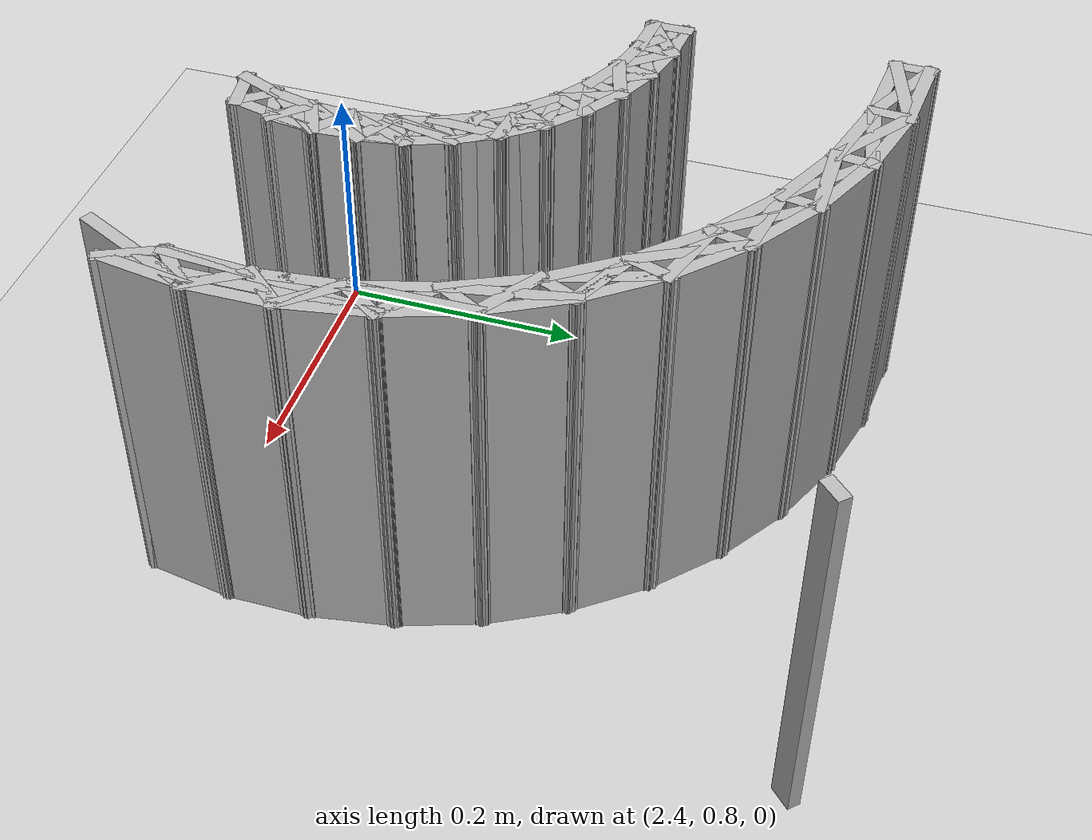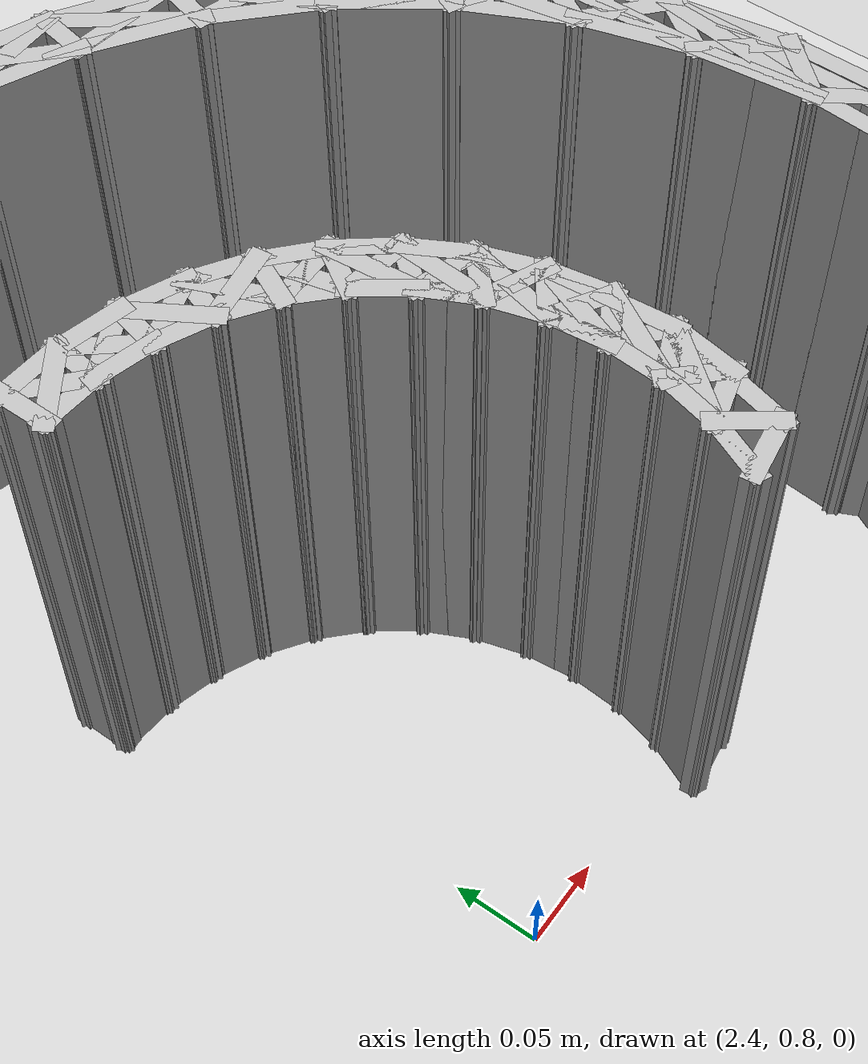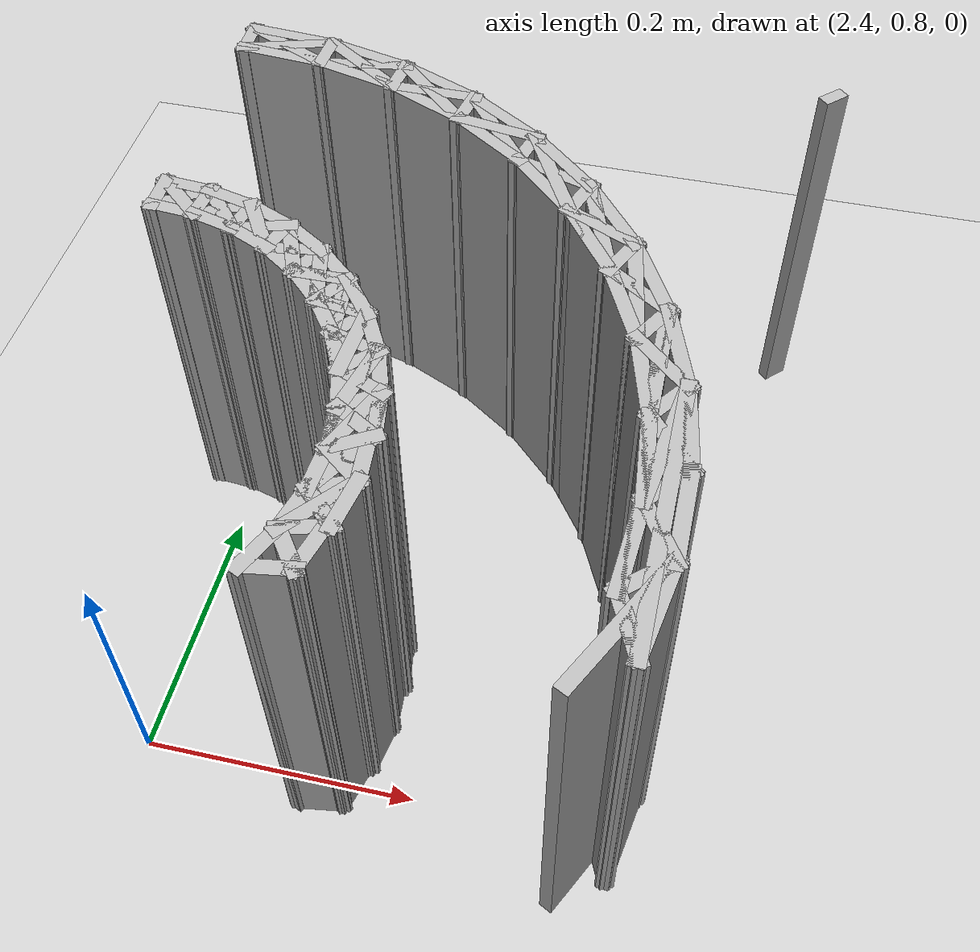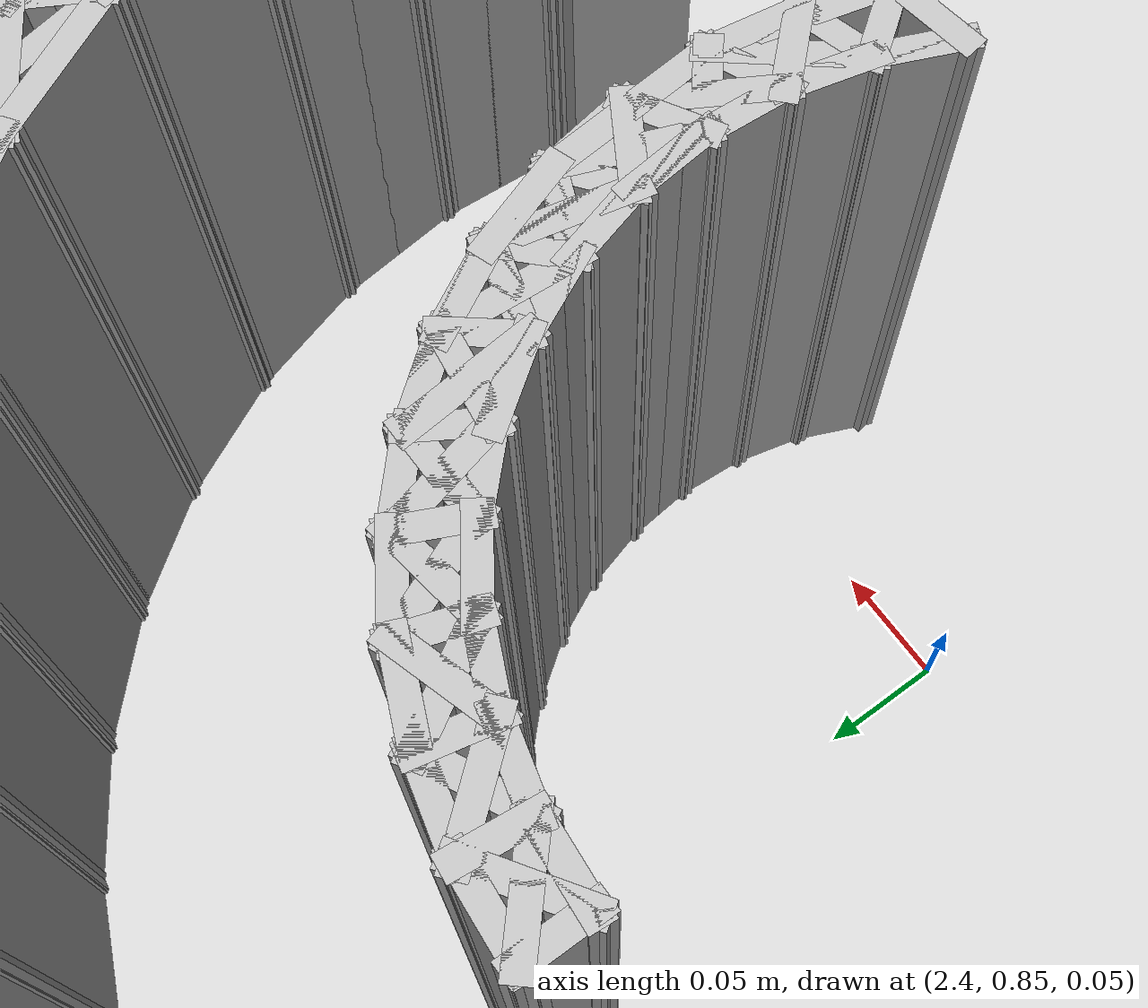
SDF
<sdf version="1.8">
 <world name="rosy_road">
  <model name="ground_plane">
   <link name="l">
    <visual name="v"><geometry><plane><normal>0 0 1</normal><size>4 2</size></plane></geometry></visual>
    <collision name="v"><geometry><plane><normal>0 0 1</normal><size>4 2</size></plane></geometry></collision>
   </link>
  </model>
  <model name="walls">
   <static>true</static>
   <link name="wall_019">
    <pose>2.8076 1.2701 0.150 0 0 0.7854</pose>
    <visual name="v"><geometry><box><size>0.0200 0.0100 0.300</size></box></geometry></visual>
    <collision name="c"><geometry><box><size>0.0200 0.0100 0.300</size></box></geometry></collision>
   </link>
   <link name="wall_122">
    <pose>2.3650 1.2450 0.150 0 0 1.5708</pose>
    <visual name="v"><geometry><box><size>0.0369 0.0100 0.300</size></box></geometry></visual>
    <collision name="c"><geometry><box><size>0.0369 0.0100 0.300</size></box></geometry></collision>
   </link>
   <link name="wall_123">
    <pose>2.3963 1.2423 0.150 0 0 -0.4515</pose>
    <visual name="v"><geometry><box><size>0.0817 0.0100 0.300</size></box></geometry></visual>
    <collision name="c"><geometry><box><size>0.0817 0.0100 0.300</size></box></geometry></collision>
   </link>
   <link name="wall_124">
    <pose>2.3963 1.2298 0.150 0 0 3.0541</pose>
    <visual name="v"><geometry><box><size>0.0749 0.0100 0.300</size></box></geometry></visual>
    <collision name="c"><geometry><box><size>0.0749 0.0100 0.300</size></box></geometry></collision>
   </link>
   <link name="wall_125">
    <pose>2.3971 1.2424 0.150 0 0 0.2963</pose>
    <visual name="v"><geometry><box><size>0.0791 0.0100 0.300</size></box></geometry></visual>
    <collision name="c"><geometry><box><size>0.0791 0.0100 0.300</size></box></geometry></collision>
   </link>
   <link name="wall_126">
    <pose>2.3971 1.2548 0.150 0 0 3.0592</pose>
    <visual name="v"><geometry><box><size>0.0764 0.0100 0.300</size></box></geometry></visual>
    <collision name="c"><geometry><box><size>0.0764 0.0100 0.300</size></box></geometry></collision>
   </link>
   <link name="wall_132">
    <pose>2.4284 1.2397 0.150 0 0 1.5111</pose>
    <visual name="v"><geometry><box><size>0.0371 0.0100 0.300</size></box></geometry></visual>
    <collision name="c"><geometry><box><size>0.0371 0.0100 0.300</size></box></geometry></collision>
   </link>
   <link name="wall_133">
    <pose>2.4589 1.2316 0.150 0 0 -0.6064</pose>
    <visual name="v"><geometry><box><size>0.0843 0.0100 0.300</size></box></geometry></visual>
    <collision name="c"><geometry><box><size>0.0843 0.0100 0.300</size></box></geometry></collision>
   </link>
   <link name="wall_134">
    <pose>2.4581 1.2190 0.150 0 0 2.8831</pose>
    <visual name="v"><geometry><box><size>0.0750 0.0100 0.300</size></box></geometry></visual>
    <collision name="c"><geometry><box><size>0.0750 0.0100 0.300</size></box></geometry></collision>
   </link>
   <link name="wall_135">
    <pose>2.4596 1.2318 0.150 0 0 0.1463</pose>
    <visual name="v"><geometry><box><size>0.0765 0.0100 0.300</size></box></geometry></visual>
    <collision name="c"><geometry><box><size>0.0765 0.0100 0.300</size></box></geometry></collision>
   </link>
   <link name="wall_136">
    <pose>2.4604 1.2443 0.150 0 0 2.8947</pose>
    <visual name="v"><geometry><box><size>0.0762 0.0100 0.300</size></box></geometry></visual>
    <collision name="c"><geometry><box><size>0.0762 0.0100 0.300</size></box></geometry></collision>
   </link>
   <link name="wall_142">
    <pose>2.4901 1.2237 0.150 0 0 1.4576</pose>
    <visual name="v"><geometry><box><size>0.0377 0.0100 0.300</size></box></geometry></visual>
    <collision name="c"><geometry><box><size>0.0377 0.0100 0.300</size></box></geometry></collision>
   </link>
   <link name="wall_143">
    <pose>2.5186 1.2106 0.150 0 0 -0.7628</pose>
    <visual name="v"><geometry><box><size>0.0870 0.0100 0.300</size></box></geometry></visual>
    <collision name="c"><geometry><box><size>0.0870 0.0100 0.300</size></box></geometry></collision>
   </link>
   <link name="wall_144">
    <pose>2.5171 1.1978 0.150 0 0 2.7100</pose>
    <visual name="v"><geometry><box><size>0.0749 0.0100 0.300</size></box></geometry></visual>
    <collision name="c"><geometry><box><size>0.0749 0.0100 0.300</size></box></geometry></collision>
   </link>
   <link name="wall_145">
    <pose>2.5195 1.2108 0.150 0 0 -0.0049</pose>
    <visual name="v"><geometry><box><size>0.0738 0.0100 0.300</size></box></geometry></visual>
    <collision name="c"><geometry><box><size>0.0738 0.0100 0.300</size></box></geometry></collision>
   </link>
   <link name="wall_146">
    <pose>2.5210 1.2236 0.150 0 0 2.7287</pose>
    <visual name="v"><geometry><box><size>0.0763 0.0100 0.300</size></box></geometry></visual>
    <collision name="c"><geometry><box><size>0.0763 0.0100 0.300</size></box></geometry></collision>
   </link>
   <link name="wall_152">
    <pose>2.5481 1.1977 0.150 0 0 1.3920</pose>
    <visual name="v"><geometry><box><size>0.0384 0.0100 0.300</size></box></geometry></visual>
    <collision name="c"><geometry><box><size>0.0384 0.0100 0.300</size></box></geometry></collision>
   </link>
   <link name="wall_153">
    <pose>2.5739 1.1798 0.150 0 0 -0.9196</pose>
    <visual name="v"><geometry><box><size>0.0897 0.0100 0.300</size></box></geometry></visual>
    <collision name="c"><geometry><box><size>0.0897 0.0100 0.300</size></box></geometry></collision>
   </link>
   <link name="wall_154">
    <pose>2.5716 1.1668 0.150 0 0 2.5369</pose>
    <visual name="v"><geometry><box><size>0.0750 0.0100 0.300</size></box></geometry></visual>
    <collision name="c"><geometry><box><size>0.0750 0.0100 0.300</size></box></geometry></collision>
   </link>
   <link name="wall_155">
    <pose>2.5750 1.1801 0.150 0 0 -0.1557</pose>
    <visual name="v"><geometry><box><size>0.0713 0.0100 0.300</size></box></geometry></visual>
    <collision name="c"><geometry><box><size>0.0713 0.0100 0.300</size></box></geometry></collision>
   </link>
   <link name="wall_156">
    <pose>2.5774 1.1931 0.150 0 0 2.5631</pose>
    <visual name="v"><geometry><box><size>0.0764 0.0100 0.300</size></box></geometry></visual>
    <collision name="c"><geometry><box><size>0.0764 0.0100 0.300</size></box></geometry></collision>
   </link>
   <link name="wall_162">
    <pose>2.6009 1.1622 0.150 0 0 1.3205</pose>
    <visual name="v"><geometry><box><size>0.0395 0.0100 0.300</size></box></geometry></visual>
    <collision name="c"><geometry><box><size>0.0395 0.0100 0.300</size></box></geometry></collision>
   </link>
   <link name="wall_163">
    <pose>2.6234 1.1401 0.150 0 0 -1.0765</pose>
    <visual name="v"><geometry><box><size>0.0923 0.0100 0.300</size></box></geometry></visual>
    <collision name="c"><geometry><box><size>0.0923 0.0100 0.300</size></box></geometry></collision>
   </link>
   <link name="wall_164">
    <pose>2.6199 1.1268 0.150 0 0 2.3652</pose>
    <visual name="v"><geometry><box><size>0.0749 0.0100 0.300</size></box></geometry></visual>
    <collision name="c"><geometry><box><size>0.0749 0.0100 0.300</size></box></geometry></collision>
   </link>
   <link name="wall_165">
    <pose>2.6246 1.1404 0.150 0 0 -0.3023</pose>
    <visual name="v"><geometry><box><size>0.0688 0.0100 0.300</size></box></geometry></visual>
    <collision name="c"><geometry><box><size>0.0688 0.0100 0.300</size></box></geometry></collision>
   </link>
   <link name="wall_166">
    <pose>2.6280 1.1538 0.150 0 0 2.3991</pose>
    <visual name="v"><geometry><box><size>0.0763 0.0100 0.300</size></box></geometry></visual>
    <collision name="c"><geometry><box><size>0.0763 0.0100 0.300</size></box></geometry></collision>
   </link>
   <link name="wall_172">
    <pose>2.6471 1.1184 0.150 0 0 1.2413</pose>
    <visual name="v"><geometry><box><size>0.0407 0.0100 0.300</size></box></geometry></visual>
    <collision name="c"><geometry><box><size>0.0407 0.0100 0.300</size></box></geometry></collision>
   </link>
   <link name="wall_173">
    <pose>2.6654 1.0928 0.150 0 0 -1.2353</pose>
    <visual name="v"><geometry><box><size>0.0949 0.0100 0.300</size></box></geometry></visual>
    <collision name="c"><geometry><box><size>0.0949 0.0100 0.300</size></box></geometry></collision>
   </link>
   <link name="wall_174">
    <pose>2.6607 1.0793 0.150 0 0 2.1923</pose>
    <visual name="v"><geometry><box><size>0.0749 0.0100 0.300</size></box></geometry></visual>
    <collision name="c"><geometry><box><size>0.0749 0.0100 0.300</size></box></geometry></collision>
   </link>
   <link name="wall_175">
    <pose>2.6668 1.0930 0.150 0 0 -0.4488</pose>
    <visual name="v"><geometry><box><size>0.0662 0.0100 0.300</size></box></geometry></visual>
    <collision name="c"><geometry><box><size>0.0662 0.0100 0.300</size></box></geometry></collision>
   </link>
   <link name="wall_176">
    <pose>2.6714 1.1067 0.150 0 0 2.2327</pose>
    <visual name="v"><geometry><box><size>0.0763 0.0100 0.300</size></box></geometry></visual>
    <collision name="c"><geometry><box><size>0.0763 0.0100 0.300</size></box></geometry></collision>
   </link>
   <link name="wall_177">
    <pose>2.6654 1.0928 0.150 0 0 -1.2353</pose>
    <visual name="v"><geometry><box><size>0.0949 0.0100 0.300</size></box></geometry></visual>
    <collision name="c"><geometry><box><size>0.0949 0.0100 0.300</size></box></geometry></collision>
   </link>
   <link name="wall_178">
    <pose>2.6851 1.0675 0.150 0 0 1.1546</pose>
    <visual name="v"><geometry><box><size>0.0422 0.0100 0.300</size></box></geometry></visual>
    <collision name="c"><geometry><box><size>0.0422 0.0100 0.300</size></box></geometry></collision>
   </link>
   <link name="wall_179">
    <pose>2.6987 1.0392 0.150 0 0 -1.3936</pose>
    <visual name="v"><geometry><box><size>0.0976 0.0100 0.300</size></box></geometry></visual>
    <collision name="c"><geometry><box><size>0.0976 0.0100 0.300</size></box></geometry></collision>
   </link>
   <link name="wall_180">
    <pose>2.6926 1.0253 0.150 0 0 2.0195</pose>
    <visual name="v"><geometry><box><size>0.0749 0.0100 0.300</size></box></geometry></visual>
    <collision name="c"><geometry><box><size>0.0749 0.0100 0.300</size></box></geometry></collision>
   </link>
   <link name="wall_181">
    <pose>2.7005 1.0393 0.150 0 0 -0.5928</pose>
    <visual name="v"><geometry><box><size>0.0637 0.0100 0.300</size></box></geometry></visual>
    <collision name="c"><geometry><box><size>0.0637 0.0100 0.300</size></box></geometry></collision>
   </link>
   <link name="wall_182">
    <pose>2.7066 1.0531 0.150 0 0 2.0685</pose>
    <visual name="v"><geometry><box><size>0.0763 0.0100 0.300</size></box></geometry></visual>
    <collision name="c"><geometry><box><size>0.0763 0.0100 0.300</size></box></geometry></collision>
   </link>
   <link name="wall_183">
    <pose>2.6668 1.0930 0.150 0 0 2.6928</pose>
    <visual name="v"><geometry><box><size>0.0662 0.0100 0.300</size></box></geometry></visual>
    <collision name="c"><geometry><box><size>0.0662 0.0100 0.300</size></box></geometry></collision>
   </link>
   <link name="wall_184">
    <pose>2.6607 1.0793 0.150 0 0 -0.9493</pose>
    <visual name="v"><geometry><box><size>0.0749 0.0100 0.300</size></box></geometry></visual>
    <collision name="c"><geometry><box><size>0.0749 0.0100 0.300</size></box></geometry></collision>
   </link>
   <link name="wall_185">
    <pose>2.6851 1.0675 0.150 0 0 1.1546</pose>
    <visual name="v"><geometry><box><size>0.0422 0.0100 0.300</size></box></geometry></visual>
    <collision name="c"><geometry><box><size>0.0422 0.0100 0.300</size></box></geometry></collision>
   </link>
   <link name="wall_186">
    <pose>2.6714 1.1067 0.150 0 0 2.2327</pose>
    <visual name="v"><geometry><box><size>0.0763 0.0100 0.300</size></box></geometry></visual>
    <collision name="c"><geometry><box><size>0.0763 0.0100 0.300</size></box></geometry></collision>
   </link>
   <link name="wall_197">
    <pose>2.7141 1.0109 0.150 0 0 1.0594</pose>
    <visual name="v"><geometry><box><size>0.0439 0.0100 0.300</size></box></geometry></visual>
    <collision name="c"><geometry><box><size>0.0439 0.0100 0.300</size></box></geometry></collision>
   </link>
   <link name="wall_198">
    <pose>2.7227 0.9806 0.150 0 0 -1.5527</pose>
    <visual name="v"><geometry><box><size>0.1004 0.0100 0.300</size></box></geometry></visual>
    <collision name="c"><geometry><box><size>0.1004 0.0100 0.300</size></box></geometry></collision>
   </link>
   <link name="wall_199">
    <pose>2.7149 0.9667 0.150 0 0 1.8474</pose>
    <visual name="v"><geometry><box><size>0.0750 0.0100 0.300</size></box></geometry></visual>
    <collision name="c"><geometry><box><size>0.0750 0.0100 0.300</size></box></geometry></collision>
   </link>
   <link name="wall_200">
    <pose>2.7246 0.9805 0.150 0 0 -0.7337</pose>
    <visual name="v"><geometry><box><size>0.0613 0.0100 0.300</size></box></geometry></visual>
    <collision name="c"><geometry><box><size>0.0613 0.0100 0.300</size></box></geometry></collision>
   </link>
   <link name="wall_201">
    <pose>2.7066 1.0531 0.150 0 0 2.0685</pose>
    <visual name="v"><geometry><box><size>0.0763 0.0100 0.300</size></box></geometry></visual>
    <collision name="c"><geometry><box><size>0.0763 0.0100 0.300</size></box></geometry></collision>
   </link>
   <link name="wall_202">
    <pose>2.6987 1.0392 0.150 0 0 -1.3936</pose>
    <visual name="v"><geometry><box><size>0.0976 0.0100 0.300</size></box></geometry></visual>
    <collision name="c"><geometry><box><size>0.0976 0.0100 0.300</size></box></geometry></collision>
   </link>
   <link name="wall_203">
    <pose>2.6926 1.0253 0.150 0 0 2.0195</pose>
    <visual name="v"><geometry><box><size>0.0749 0.0100 0.300</size></box></geometry></visual>
    <collision name="c"><geometry><box><size>0.0749 0.0100 0.300</size></box></geometry></collision>
   </link>
   <link name="wall_204">
    <pose>2.7005 1.0393 0.150 0 0 -0.5928</pose>
    <visual name="v"><geometry><box><size>0.0637 0.0100 0.300</size></box></geometry></visual>
    <collision name="c"><geometry><box><size>0.0637 0.0100 0.300</size></box></geometry></collision>
   </link>
   <link name="wall_205">
    <pose>2.7141 1.0109 0.150 0 0 -2.0822</pose>
    <visual name="v"><geometry><box><size>0.0439 0.0100 0.300</size></box></geometry></visual>
    <collision name="c"><geometry><box><size>0.0439 0.0100 0.300</size></box></geometry></collision>
   </link>
   <link name="wall_206">
    <pose>2.7246 0.9805 0.150 0 0 -0.7337</pose>
    <visual name="v"><geometry><box><size>0.0613 0.0100 0.300</size></box></geometry></visual>
    <collision name="c"><geometry><box><size>0.0613 0.0100 0.300</size></box></geometry></collision>
   </link>
   <link name="wall_207">
    <pose>2.7332 0.9502 0.150 0 0 -2.1835</pose>
    <visual name="v"><geometry><box><size>0.0457 0.0100 0.300</size></box></geometry></visual>
    <collision name="c"><geometry><box><size>0.0457 0.0100 0.300</size></box></geometry></collision>
   </link>
   <link name="wall_208">
    <pose>2.7268 0.9051 0.150 0 0 -1.4673</pose>
    <visual name="v"><geometry><box><size>0.0749 0.0100 0.300</size></box></geometry></visual>
    <collision name="c"><geometry><box><size>0.0749 0.0100 0.300</size></box></geometry></collision>
   </link>
   <link name="wall_209">
    <pose>2.7364 0.9189 0.150 0 0 1.4287</pose>
    <visual name="v"><geometry><box><size>0.1031 0.0100 0.300</size></box></geometry></visual>
    <collision name="c"><geometry><box><size>0.1031 0.0100 0.300</size></box></geometry></collision>
   </link>
   <link name="wall_210">
    <pose>2.7483 0.9323 0.150 0 0 -1.4036</pose>
    <visual name="v"><geometry><box><size>0.0763 0.0100 0.300</size></box></geometry></visual>
    <collision name="c"><geometry><box><size>0.0763 0.0100 0.300</size></box></geometry></collision>
   </link>
   <link name="wall_211">
    <pose>2.7386 0.9185 0.150 0 0 2.2699</pose>
    <visual name="v"><geometry><box><size>0.0588 0.0100 0.300</size></box></geometry></visual>
    <collision name="c"><geometry><box><size>0.0588 0.0100 0.300</size></box></geometry></collision>
   </link>
   <link name="wall_212">
    <pose>2.7227 0.9806 0.150 0 0 1.5889</pose>
    <visual name="v"><geometry><box><size>0.1004 0.0100 0.300</size></box></geometry></visual>
    <collision name="c"><geometry><box><size>0.1004 0.0100 0.300</size></box></geometry></collision>
   </link>
   <link name="wall_213">
    <pose>2.7324 0.9944 0.150 0 0 -1.2382</pose>
    <visual name="v"><geometry><box><size>0.0763 0.0100 0.300</size></box></geometry></visual>
    <collision name="c"><geometry><box><size>0.0763 0.0100 0.300</size></box></geometry></collision>
   </link>
   <link name="wall_214">
    <pose>2.7332 0.9502 0.150 0 0 -2.1835</pose>
    <visual name="v"><geometry><box><size>0.0457 0.0100 0.300</size></box></geometry></visual>
    <collision name="c"><geometry><box><size>0.0457 0.0100 0.300</size></box></geometry></collision>
   </link>
   <link name="wall_215">
    <pose>2.7149 0.9667 0.150 0 0 1.8474</pose>
    <visual name="v"><geometry><box><size>0.0750 0.0100 0.300</size></box></geometry></visual>
    <collision name="c"><geometry><box><size>0.0750 0.0100 0.300</size></box></geometry></collision>
   </link>
   <link name="wall_226">
    <pose>2.7418 0.8872 0.150 0 0 -2.2928</pose>
    <visual name="v"><geometry><box><size>0.0477 0.0100 0.300</size></box></geometry></visual>
    <collision name="c"><geometry><box><size>0.0477 0.0100 0.300</size></box></geometry></collision>
   </link>
   <link name="wall_227">
    <pose>2.7279 0.8425 0.150 0 0 -1.6393</pose>
    <visual name="v"><geometry><box><size>0.0748 0.0100 0.300</size></box></geometry></visual>
    <collision name="c"><geometry><box><size>0.0748 0.0100 0.300</size></box></geometry></collision>
   </link>
   <link name="wall_228">
    <pose>2.7279 0.8425 0.150 0 0 1.5023</pose>
    <visual name="v"><geometry><box><size>0.0748 0.0100 0.300</size></box></geometry></visual>
    <collision name="c"><geometry><box><size>0.0748 0.0100 0.300</size></box></geometry></collision>
   </link>
   <link name="wall_229">
    <pose>2.7418 0.8872 0.150 0 0 0.8488</pose>
    <visual name="v"><geometry><box><size>0.0477 0.0100 0.300</size></box></geometry></visual>
    <collision name="c"><geometry><box><size>0.0477 0.0100 0.300</size></box></geometry></collision>
   </link>
   <link name="wall_231">
    <pose>2.7322 0.7932 0.150 0 0 1.1067</pose>
    <visual name="v"><geometry><box><size>0.1085 0.0100 0.300</size></box></geometry></visual>
    <collision name="c"><geometry><box><size>0.1085 0.0100 0.300</size></box></geometry></collision>
   </link>
   <link name="wall_232">
    <pose>2.7419 0.8550 0.150 0 0 2.1363</pose>
    <visual name="v"><geometry><box><size>0.0564 0.0100 0.300</size></box></geometry></visual>
    <collision name="c"><geometry><box><size>0.0564 0.0100 0.300</size></box></geometry></collision>
   </link>
   <link name="wall_233">
    <pose>2.7268 0.9051 0.150 0 0 1.6743</pose>
    <visual name="v"><geometry><box><size>0.0749 0.0100 0.300</size></box></geometry></visual>
    <collision name="c"><geometry><box><size>0.0749 0.0100 0.300</size></box></geometry></collision>
   </link>
   <link name="wall_234">
    <pose>2.7386 0.9185 0.150 0 0 -0.8717</pose>
    <visual name="v"><geometry><box><size>0.0588 0.0100 0.300</size></box></geometry></visual>
    <collision name="c"><geometry><box><size>0.0588 0.0100 0.300</size></box></geometry></collision>
   </link>
   <link name="wall_235">
    <pose>2.7537 0.8685 0.150 0 0 -1.5677</pose>
    <visual name="v"><geometry><box><size>0.0763 0.0100 0.300</size></box></geometry></visual>
    <collision name="c"><geometry><box><size>0.0763 0.0100 0.300</size></box></geometry></collision>
   </link>
   <link name="wall_236">
    <pose>2.7397 0.8237 0.150 0 0 -2.4105</pose>
    <visual name="v"><geometry><box><size>0.0497 0.0100 0.300</size></box></geometry></visual>
    <collision name="c"><geometry><box><size>0.0497 0.0100 0.300</size></box></geometry></collision>
   </link>
   <link name="wall_237">
    <pose>2.7346 0.7920 0.150 0 0 -1.1379</pose>
    <visual name="v"><geometry><box><size>0.0542 0.0100 0.300</size></box></geometry></visual>
    <collision name="c"><geometry><box><size>0.0542 0.0100 0.300</size></box></geometry></collision>
   </link>
   <link name="wall_238">
    <pose>2.7431 0.8684 0.150 0 0 1.5734</pose>
    <visual name="v"><geometry><box><size>0.2032 0.0100 0.300</size></box></geometry></visual>
    <collision name="c"><geometry><box><size>0.2032 0.0100 0.300</size></box></geometry></collision>
   </link>
   <link name="wall_249">
    <pose>2.7397 0.8237 0.150 0 0 -2.4105</pose>
    <visual name="v"><geometry><box><size>0.0497 0.0100 0.300</size></box></geometry></visual>
    <collision name="c"><geometry><box><size>0.0497 0.0100 0.300</size></box></geometry></collision>
   </link>
   <link name="wall_262">
    <pose>2.7486 0.8045 0.150 0 0 1.4085</pose>
    <visual name="v"><geometry><box><size>0.0763 0.0100 0.300</size></box></geometry></visual>
    <collision name="c"><geometry><box><size>0.0763 0.0100 0.300</size></box></geometry></collision>
   </link>
   <link name="wall_263">
    <pose>2.7419 0.8550 0.150 0 0 2.1363</pose>
    <visual name="v"><geometry><box><size>0.0564 0.0100 0.300</size></box></geometry></visual>
    <collision name="c"><geometry><box><size>0.0564 0.0100 0.300</size></box></geometry></collision>
   </link>
   <link name="wall_284">
    <pose>2.7346 0.7920 0.150 0 0 2.0037</pose>
    <visual name="v"><geometry><box><size>0.0542 0.0100 0.300</size></box></geometry></visual>
    <collision name="c"><geometry><box><size>0.0542 0.0100 0.300</size></box></geometry></collision>
   </link>
   <link name="wall_825">
    <pose>2.3650 1.0600 0.150 0 0 1.5708</pose>
    <visual name="v"><geometry><box><size>0.0371 0.0100 0.300</size></box></geometry></visual>
    <collision name="c"><geometry><box><size>0.0371 0.0100 0.300</size></box></geometry></collision>
   </link>
   <link name="wall_826">
    <pose>2.3805 1.0588 0.150 0 0 -0.7292</pose>
    <visual name="v"><geometry><box><size>0.0536 0.0100 0.300</size></box></geometry></visual>
    <collision name="c"><geometry><box><size>0.0536 0.0100 0.300</size></box></geometry></collision>
   </link>
   <link name="wall_827">
    <pose>2.3805 1.0462 0.150 0 0 3.0579</pose>
    <visual name="v"><geometry><box><size>0.0431 0.0100 0.300</size></box></geometry></visual>
    <collision name="c"><geometry><box><size>0.0431 0.0100 0.300</size></box></geometry></collision>
   </link>
   <link name="wall_828">
    <pose>2.3819 1.0587 0.150 0 0 0.5846</pose>
    <visual name="v"><geometry><box><size>0.0524 0.0100 0.300</size></box></geometry></visual>
    <collision name="c"><geometry><box><size>0.0524 0.0100 0.300</size></box></geometry></collision>
   </link>
   <link name="wall_829">
    <pose>2.3819 1.0712 0.150 0 0 3.0587</pose>
    <visual name="v"><geometry><box><size>0.0458 0.0100 0.300</size></box></geometry></visual>
    <collision name="c"><geometry><box><size>0.0458 0.0100 0.300</size></box></geometry></collision>
   </link>
   <link name="wall_835">
    <pose>2.3973 1.0574 0.150 0 0 1.4628</pose>
    <visual name="v"><geometry><box><size>0.0370 0.0100 0.300</size></box></geometry></visual>
    <collision name="c"><geometry><box><size>0.0370 0.0100 0.300</size></box></geometry></collision>
   </link>
   <link name="wall_836">
    <pose>2.4123 1.0534 0.150 0 0 -0.8782</pose>
    <visual name="v"><geometry><box><size>0.0548 0.0100 0.300</size></box></geometry></visual>
    <collision name="c"><geometry><box><size>0.0548 0.0100 0.300</size></box></geometry></collision>
   </link>
   <link name="wall_837">
    <pose>2.4110 1.0409 0.150 0 0 2.8810</pose>
    <visual name="v"><geometry><box><size>0.0430 0.0100 0.300</size></box></geometry></visual>
    <collision name="c"><geometry><box><size>0.0430 0.0100 0.300</size></box></geometry></collision>
   </link>
   <link name="wall_838">
    <pose>2.4137 1.0532 0.150 0 0 0.4374</pose>
    <visual name="v"><geometry><box><size>0.0512 0.0100 0.300</size></box></geometry></visual>
    <collision name="c"><geometry><box><size>0.0512 0.0100 0.300</size></box></geometry></collision>
   </link>
   <link name="wall_839">
    <pose>2.4151 1.0656 0.150 0 0 2.8937</pose>
    <visual name="v"><geometry><box><size>0.0458 0.0100 0.300</size></box></geometry></visual>
    <collision name="c"><geometry><box><size>0.0458 0.0100 0.300</size></box></geometry></collision>
   </link>
   <link name="wall_845">
    <pose>2.4287 1.0492 0.150 0 0 1.3508</pose>
    <visual name="v"><geometry><box><size>0.0372 0.0100 0.300</size></box></geometry></visual>
    <collision name="c"><geometry><box><size>0.0372 0.0100 0.300</size></box></geometry></collision>
   </link>
   <link name="wall_846">
    <pose>2.4428 1.0427 0.150 0 0 -1.0276</pose>
    <visual name="v"><geometry><box><size>0.0559 0.0100 0.300</size></box></geometry></visual>
    <collision name="c"><geometry><box><size>0.0559 0.0100 0.300</size></box></geometry></collision>
   </link>
   <link name="wall_847">
    <pose>2.4401 1.0304 0.150 0 0 2.7096</pose>
    <visual name="v"><geometry><box><size>0.0431 0.0100 0.300</size></box></geometry></visual>
    <collision name="c"><geometry><box><size>0.0431 0.0100 0.300</size></box></geometry></collision>
   </link>
   <link name="wall_848">
    <pose>2.4442 1.0424 0.150 0 0 0.2927</pose>
    <visual name="v"><geometry><box><size>0.0501 0.0100 0.300</size></box></geometry></visual>
    <collision name="c"><geometry><box><size>0.0501 0.0100 0.300</size></box></geometry></collision>
   </link>
   <link name="wall_849">
    <pose>2.4470 1.0547 0.150 0 0 2.7282</pose>
    <visual name="v"><geometry><box><size>0.0459 0.0100 0.300</size></box></geometry></visual>
    <collision name="c"><geometry><box><size>0.0459 0.0100 0.300</size></box></geometry></collision>
   </link>
   <link name="wall_855">
    <pose>2.4583 1.0359 0.150 0 0 1.2378</pose>
    <visual name="v"><geometry><box><size>0.0374 0.0100 0.300</size></box></geometry></visual>
    <collision name="c"><geometry><box><size>0.0374 0.0100 0.300</size></box></geometry></collision>
   </link>
   <link name="wall_856">
    <pose>2.4711 1.0271 0.150 0 0 -1.1787</pose>
    <visual name="v"><geometry><box><size>0.0570 0.0100 0.300</size></box></geometry></visual>
    <collision name="c"><geometry><box><size>0.0570 0.0100 0.300</size></box></geometry></collision>
   </link>
   <link name="wall_857">
    <pose>2.4669 1.0151 0.150 0 0 2.5375</pose>
    <visual name="v"><geometry><box><size>0.0430 0.0100 0.300</size></box></geometry></visual>
    <collision name="c"><geometry><box><size>0.0430 0.0100 0.300</size></box></geometry></collision>
   </link>
   <link name="wall_858">
    <pose>2.4725 1.0267 0.150 0 0 0.1492</pose>
    <visual name="v"><geometry><box><size>0.0490 0.0100 0.300</size></box></geometry></visual>
    <collision name="c"><geometry><box><size>0.0490 0.0100 0.300</size></box></geometry></collision>
   </link>
   <link name="wall_859">
    <pose>2.4767 1.0387 0.150 0 0 2.5626</pose>
    <visual name="v"><geometry><box><size>0.0458 0.0100 0.300</size></box></geometry></visual>
    <collision name="c"><geometry><box><size>0.0458 0.0100 0.300</size></box></geometry></collision>
   </link>
   <link name="wall_865">
    <pose>2.4853 1.0178 0.150 0 0 1.1229</pose>
    <visual name="v"><geometry><box><size>0.0376 0.0100 0.300</size></box></geometry></visual>
    <collision name="c"><geometry><box><size>0.0376 0.0100 0.300</size></box></geometry></collision>
   </link>
   <link name="wall_866">
    <pose>2.4963 1.0070 0.150 0 0 -1.3300</pose>
    <visual name="v"><geometry><box><size>0.0581 0.0100 0.300</size></box></geometry></visual>
    <collision name="c"><geometry><box><size>0.0581 0.0100 0.300</size></box></geometry></collision>
   </link>
   <link name="wall_867">
    <pose>2.4907 0.9955 0.150 0 0 2.3653</pose>
    <visual name="v"><geometry><box><size>0.0430 0.0100 0.300</size></box></geometry></visual>
    <collision name="c"><geometry><box><size>0.0430 0.0100 0.300</size></box></geometry></collision>
   </link>
   <link name="wall_868">
    <pose>2.4977 1.0065 0.150 0 0 0.0083</pose>
    <visual name="v"><geometry><box><size>0.0480 0.0100 0.300</size></box></geometry></visual>
    <collision name="c"><geometry><box><size>0.0480 0.0100 0.300</size></box></geometry></collision>
   </link>
   <link name="wall_869">
    <pose>2.5032 1.0180 0.150 0 0 2.4002</pose>
    <visual name="v"><geometry><box><size>0.0458 0.0100 0.300</size></box></geometry></visual>
    <collision name="c"><geometry><box><size>0.0458 0.0100 0.300</size></box></geometry></collision>
   </link>
   <link name="wall_870">
    <pose>2.4963 1.0070 0.150 0 0 -1.3300</pose>
    <visual name="v"><geometry><box><size>0.0581 0.0100 0.300</size></box></geometry></visual>
    <collision name="c"><geometry><box><size>0.0581 0.0100 0.300</size></box></geometry></collision>
   </link>
   <link name="wall_871">
    <pose>2.5088 0.9956 0.150 0 0 1.0073</pose>
    <visual name="v"><geometry><box><size>0.0380 0.0100 0.300</size></box></geometry></visual>
    <collision name="c"><geometry><box><size>0.0380 0.0100 0.300</size></box></geometry></collision>
   </link>
   <link name="wall_872">
    <pose>2.5178 0.9829 0.150 0 0 -1.4822</pose>
    <visual name="v"><geometry><box><size>0.0595 0.0100 0.300</size></box></geometry></visual>
    <collision name="c"><geometry><box><size>0.0595 0.0100 0.300</size></box></geometry></collision>
   </link>
   <link name="wall_873">
    <pose>2.5109 0.9720 0.150 0 0 2.1918</pose>
    <visual name="v"><geometry><box><size>0.0431 0.0100 0.300</size></box></geometry></visual>
    <collision name="c"><geometry><box><size>0.0431 0.0100 0.300</size></box></geometry></collision>
   </link>
   <link name="wall_874">
    <pose>2.5192 0.9822 0.150 0 0 -0.1346</pose>
    <visual name="v"><geometry><box><size>0.0470 0.0100 0.300</size></box></geometry></visual>
    <collision name="c"><geometry><box><size>0.0470 0.0100 0.300</size></box></geometry></collision>
   </link>
   <link name="wall_875">
    <pose>2.5261 0.9932 0.150 0 0 2.2326</pose>
    <visual name="v"><geometry><box><size>0.0458 0.0100 0.300</size></box></geometry></visual>
    <collision name="c"><geometry><box><size>0.0458 0.0100 0.300</size></box></geometry></collision>
   </link>
   <link name="wall_876">
    <pose>2.4977 1.0065 0.150 0 0 -3.1333</pose>
    <visual name="v"><geometry><box><size>0.0480 0.0100 0.300</size></box></geometry></visual>
    <collision name="c"><geometry><box><size>0.0480 0.0100 0.300</size></box></geometry></collision>
   </link>
   <link name="wall_877">
    <pose>2.5267 0.9453 0.150 0 0 -1.1201</pose>
    <visual name="v"><geometry><box><size>0.0430 0.0100 0.300</size></box></geometry></visual>
    <collision name="c"><geometry><box><size>0.0430 0.0100 0.300</size></box></geometry></collision>
   </link>
   <link name="wall_878">
    <pose>2.5349 0.9556 0.150 0 0 1.5070</pose>
    <visual name="v"><geometry><box><size>0.0606 0.0100 0.300</size></box></geometry></visual>
    <collision name="c"><geometry><box><size>0.0606 0.0100 0.300</size></box></geometry></collision>
   </link>
   <link name="wall_879">
    <pose>2.5282 0.9696 0.150 0 0 -2.2491</pose>
    <visual name="v"><geometry><box><size>0.0385 0.0100 0.300</size></box></geometry></visual>
    <collision name="c"><geometry><box><size>0.0385 0.0100 0.300</size></box></geometry></collision>
   </link>
   <link name="wall_880">
    <pose>2.5362 0.9547 0.150 0 0 -0.2714</pose>
    <visual name="v"><geometry><box><size>0.0459 0.0100 0.300</size></box></geometry></visual>
    <collision name="c"><geometry><box><size>0.0459 0.0100 0.300</size></box></geometry></collision>
   </link>
   <link name="wall_881">
    <pose>2.5446 0.9650 0.150 0 0 2.0675</pose>
    <visual name="v"><geometry><box><size>0.0458 0.0100 0.300</size></box></geometry></visual>
    <collision name="c"><geometry><box><size>0.0458 0.0100 0.300</size></box></geometry></collision>
   </link>
   <link name="wall_882">
    <pose>2.5192 0.9822 0.150 0 0 3.0070</pose>
    <visual name="v"><geometry><box><size>0.0470 0.0100 0.300</size></box></geometry></visual>
    <collision name="c"><geometry><box><size>0.0470 0.0100 0.300</size></box></geometry></collision>
   </link>
   <link name="wall_903">
    <pose>2.5261 0.9932 0.150 0 0 -0.9090</pose>
    <visual name="v"><geometry><box><size>0.0458 0.0100 0.300</size></box></geometry></visual>
    <collision name="c"><geometry><box><size>0.0458 0.0100 0.300</size></box></geometry></collision>
   </link>
   <link name="wall_904">
    <pose>2.5349 0.9556 0.150 0 0 -1.6346</pose>
    <visual name="v"><geometry><box><size>0.0606 0.0100 0.300</size></box></geometry></visual>
    <collision name="c"><geometry><box><size>0.0606 0.0100 0.300</size></box></geometry></collision>
   </link>
   <link name="wall_905">
    <pose>2.5376 0.9165 0.150 0 0 -1.2969</pose>
    <visual name="v"><geometry><box><size>0.0431 0.0100 0.300</size></box></geometry></visual>
    <collision name="c"><geometry><box><size>0.0431 0.0100 0.300</size></box></geometry></collision>
   </link>
   <link name="wall_906">
    <pose>2.5472 0.9259 0.150 0 0 1.3526</pose>
    <visual name="v"><geometry><box><size>0.0619 0.0100 0.300</size></box></geometry></visual>
    <collision name="c"><geometry><box><size>0.0619 0.0100 0.300</size></box></geometry></collision>
   </link>
   <link name="wall_907">
    <pose>2.5430 0.9408 0.150 0 0 -2.3667</pose>
    <visual name="v"><geometry><box><size>0.0389 0.0100 0.300</size></box></geometry></visual>
    <collision name="c"><geometry><box><size>0.0389 0.0100 0.300</size></box></geometry></collision>
   </link>
   <link name="wall_908">
    <pose>2.5486 0.9248 0.150 0 0 -0.4109</pose>
    <visual name="v"><geometry><box><size>0.0451 0.0100 0.300</size></box></geometry></visual>
    <collision name="c"><geometry><box><size>0.0451 0.0100 0.300</size></box></geometry></collision>
   </link>
   <link name="wall_909">
    <pose>2.5581 0.9342 0.150 0 0 1.9047</pose>
    <visual name="v"><geometry><box><size>0.0459 0.0100 0.300</size></box></geometry></visual>
    <collision name="c"><geometry><box><size>0.0459 0.0100 0.300</size></box></geometry></collision>
   </link>
   <link name="wall_910">
    <pose>2.5362 0.9547 0.150 0 0 2.8702</pose>
    <visual name="v"><geometry><box><size>0.0459 0.0100 0.300</size></box></geometry></visual>
    <collision name="c"><geometry><box><size>0.0459 0.0100 0.300</size></box></geometry></collision>
   </link>
   <link name="wall_911">
    <pose>2.5178 0.9829 0.150 0 0 1.6594</pose>
    <visual name="v"><geometry><box><size>0.0595 0.0100 0.300</size></box></geometry></visual>
    <collision name="c"><geometry><box><size>0.0595 0.0100 0.300</size></box></geometry></collision>
   </link>
   <link name="wall_912">
    <pose>2.5032 1.0180 0.150 0 0 2.4002</pose>
    <visual name="v"><geometry><box><size>0.0458 0.0100 0.300</size></box></geometry></visual>
    <collision name="c"><geometry><box><size>0.0458 0.0100 0.300</size></box></geometry></collision>
   </link>
   <link name="wall_933">
    <pose>2.5446 0.9650 0.150 0 0 -1.0740</pose>
    <visual name="v"><geometry><box><size>0.0458 0.0100 0.300</size></box></geometry></visual>
    <collision name="c"><geometry><box><size>0.0458 0.0100 0.300</size></box></geometry></collision>
   </link>
   <link name="wall_934">
    <pose>2.5472 0.9259 0.150 0 0 -1.7890</pose>
    <visual name="v"><geometry><box><size>0.0619 0.0100 0.300</size></box></geometry></visual>
    <collision name="c"><geometry><box><size>0.0619 0.0100 0.300</size></box></geometry></collision>
   </link>
   <link name="wall_935">
    <pose>2.5434 0.8861 0.150 0 0 -1.4673</pose>
    <visual name="v"><geometry><box><size>0.0430 0.0100 0.300</size></box></geometry></visual>
    <collision name="c"><geometry><box><size>0.0430 0.0100 0.300</size></box></geometry></collision>
   </link>
   <link name="wall_936">
    <pose>2.5543 0.8945 0.150 0 0 1.1957</pose>
    <visual name="v"><geometry><box><size>0.0630 0.0100 0.300</size></box></geometry></visual>
    <collision name="c"><geometry><box><size>0.0630 0.0100 0.300</size></box></geometry></collision>
   </link>
   <link name="wall_937">
    <pose>2.5528 0.9099 0.150 0 0 -2.4901</pose>
    <visual name="v"><geometry><box><size>0.0395 0.0100 0.300</size></box></geometry></visual>
    <collision name="c"><geometry><box><size>0.0395 0.0100 0.300</size></box></geometry></collision>
   </link>
   <link name="wall_938">
    <pose>2.5556 0.8932 0.150 0 0 -0.5431</pose>
    <visual name="v"><geometry><box><size>0.0441 0.0100 0.300</size></box></geometry></visual>
    <collision name="c"><geometry><box><size>0.0441 0.0100 0.300</size></box></geometry></collision>
   </link>
   <link name="wall_939">
    <pose>2.5665 0.9015 0.150 0 0 1.7374</pose>
    <visual name="v"><geometry><box><size>0.0458 0.0100 0.300</size></box></geometry></visual>
    <collision name="c"><geometry><box><size>0.0458 0.0100 0.300</size></box></geometry></collision>
   </link>
   <link name="wall_940">
    <pose>2.5486 0.9248 0.150 0 0 2.7307</pose>
    <visual name="v"><geometry><box><size>0.0451 0.0100 0.300</size></box></geometry></visual>
    <collision name="c"><geometry><box><size>0.0451 0.0100 0.300</size></box></geometry></collision>
   </link>
   <link name="wall_941">
    <pose>2.5267 0.9453 0.150 0 0 2.0215</pose>
    <visual name="v"><geometry><box><size>0.0430 0.0100 0.300</size></box></geometry></visual>
    <collision name="c"><geometry><box><size>0.0430 0.0100 0.300</size></box></geometry></collision>
   </link>
   <link name="wall_942">
    <pose>2.5376 0.9165 0.150 0 0 -1.2969</pose>
    <visual name="v"><geometry><box><size>0.0431 0.0100 0.300</size></box></geometry></visual>
    <collision name="c"><geometry><box><size>0.0431 0.0100 0.300</size></box></geometry></collision>
   </link>
   <link name="wall_943">
    <pose>2.5556 0.8932 0.150 0 0 -0.5431</pose>
    <visual name="v"><geometry><box><size>0.0441 0.0100 0.300</size></box></geometry></visual>
    <collision name="c"><geometry><box><size>0.0441 0.0100 0.300</size></box></geometry></collision>
   </link>
   <link name="wall_944">
    <pose>2.5667 0.8344 0.150 0 0 -1.7340</pose>
    <visual name="v"><geometry><box><size>0.0458 0.0100 0.300</size></box></geometry></visual>
    <collision name="c"><geometry><box><size>0.0458 0.0100 0.300</size></box></geometry></collision>
   </link>
   <link name="wall_945">
    <pose>2.5534 0.8287 0.150 0 0 2.3329</pose>
    <visual name="v"><geometry><box><size>0.0424 0.0100 0.300</size></box></geometry></visual>
    <collision name="c"><geometry><box><size>0.0424 0.0100 0.300</size></box></geometry></collision>
   </link>
   <link name="wall_946">
    <pose>2.5439 0.8552 0.150 0 0 1.5032</pose>
    <visual name="v"><geometry><box><size>0.0431 0.0100 0.300</size></box></geometry></visual>
    <collision name="c"><geometry><box><size>0.0431 0.0100 0.300</size></box></geometry></collision>
   </link>
   <link name="wall_947">
    <pose>2.5572 0.8778 0.150 0 0 0.5288</pose>
    <visual name="v"><geometry><box><size>0.0401 0.0100 0.300</size></box></geometry></visual>
    <collision name="c"><geometry><box><size>0.0401 0.0100 0.300</size></box></geometry></collision>
   </link>
   <link name="wall_948">
    <pose>2.5561 0.8623 0.150 0 0 -2.0994</pose>
    <visual name="v"><geometry><box><size>0.0643 0.0100 0.300</size></box></geometry></visual>
    <collision name="c"><geometry><box><size>0.0643 0.0100 0.300</size></box></geometry></collision>
   </link>
   <link name="wall_949">
    <pose>2.5392 0.8247 0.150 0 0 -1.8119</pose>
    <visual name="v"><geometry><box><size>0.0430 0.0100 0.300</size></box></geometry></visual>
    <collision name="c"><geometry><box><size>0.0430 0.0100 0.300</size></box></geometry></collision>
   </link>
   <link name="wall_950">
    <pose>2.5524 0.8304 0.150 0 0 0.8859</pose>
    <visual name="v"><geometry><box><size>0.0656 0.0100 0.300</size></box></geometry></visual>
    <collision name="c"><geometry><box><size>0.0656 0.0100 0.300</size></box></geometry></collision>
   </link>
   <link name="wall_951">
    <pose>2.5572 0.8609 0.150 0 0 2.4649</pose>
    <visual name="v"><geometry><box><size>0.0433 0.0100 0.300</size></box></geometry></visual>
    <collision name="c"><geometry><box><size>0.0433 0.0100 0.300</size></box></geometry></collision>
   </link>
   <link name="wall_952">
    <pose>2.5543 0.8945 0.150 0 0 1.1957</pose>
    <visual name="v"><geometry><box><size>0.0630 0.0100 0.300</size></box></geometry></visual>
    <collision name="c"><geometry><box><size>0.0630 0.0100 0.300</size></box></geometry></collision>
   </link>
   <link name="wall_953">
    <pose>2.5581 0.9342 0.150 0 0 1.9047</pose>
    <visual name="v"><geometry><box><size>0.0459 0.0100 0.300</size></box></geometry></visual>
    <collision name="c"><geometry><box><size>0.0459 0.0100 0.300</size></box></geometry></collision>
   </link>
   <link name="wall_974">
    <pose>2.5561 0.8623 0.150 0 0 -2.0994</pose>
    <visual name="v"><geometry><box><size>0.0643 0.0100 0.300</size></box></geometry></visual>
    <collision name="c"><geometry><box><size>0.0643 0.0100 0.300</size></box></geometry></collision>
   </link>
   <link name="wall_975">
    <pose>2.5562 0.8454 0.150 0 0 0.4063</pose>
    <visual name="v"><geometry><box><size>0.0408 0.0100 0.300</size></box></geometry></visual>
    <collision name="c"><geometry><box><size>0.0408 0.0100 0.300</size></box></geometry></collision>
   </link>
   <link name="wall_976">
    <pose>2.5666 0.8847 0.150 0 0 1.6555</pose>
    <visual name="v"><geometry><box><size>0.0793 0.0100 0.300</size></box></geometry></visual>
    <collision name="c"><geometry><box><size>0.0793 0.0100 0.300</size></box></geometry></collision>
   </link>
   <link name="wall_977">
    <pose>2.5293 0.7954 0.150 0 0 -1.9854</pose>
    <visual name="v"><geometry><box><size>0.0430 0.0100 0.300</size></box></geometry></visual>
    <collision name="c"><geometry><box><size>0.0430 0.0100 0.300</size></box></geometry></collision>
   </link>
   <link name="wall_978">
    <pose>2.5293 0.7954 0.150 0 0 1.1562</pose>
    <visual name="v"><geometry><box><size>0.0430 0.0100 0.300</size></box></geometry></visual>
    <collision name="c"><geometry><box><size>0.0430 0.0100 0.300</size></box></geometry></collision>
   </link>
   <link name="wall_986">
    <pose>2.5442 0.7977 0.150 0 0 2.2028</pose>
    <visual name="v"><geometry><box><size>0.0416 0.0100 0.300</size></box></geometry></visual>
    <collision name="c"><geometry><box><size>0.0416 0.0100 0.300</size></box></geometry></collision>
   </link>
   <link name="wall_987">
    <pose>2.5497 0.8137 0.150 0 0 0.2778</pose>
    <visual name="v"><geometry><box><size>0.0415 0.0100 0.300</size></box></geometry></visual>
    <collision name="c"><geometry><box><size>0.0415 0.0100 0.300</size></box></geometry></collision>
   </link>
   <link name="wall_990">
    <pose>2.5524 0.8304 0.150 0 0 0.8859</pose>
    <visual name="v"><geometry><box><size>0.0656 0.0100 0.300</size></box></geometry></visual>
    <collision name="c"><geometry><box><size>0.0656 0.0100 0.300</size></box></geometry></collision>
   </link>
   <link name="wall_991">
    <pose>2.5572 0.8609 0.150 0 0 2.4649</pose>
    <visual name="v"><geometry><box><size>0.0433 0.0100 0.300</size></box></geometry></visual>
    <collision name="c"><geometry><box><size>0.0433 0.0100 0.300</size></box></geometry></collision>
   </link>
   <link name="wall_992">
    <pose>2.5434 0.8861 0.150 0 0 1.6743</pose>
    <visual name="v"><geometry><box><size>0.0430 0.0100 0.300</size></box></geometry></visual>
    <collision name="c"><geometry><box><size>0.0430 0.0100 0.300</size></box></geometry></collision>
   </link>
   <link name="wall_1017">
    <pose>2.5380 0.7835 0.150 0 0 0.1489</pose>
    <visual name="v"><geometry><box><size>0.0423 0.0100 0.300</size></box></geometry></visual>
    <collision name="c"><geometry><box><size>0.0423 0.0100 0.300</size></box></geometry></collision>
   </link>
   <link name="wall_1018">
    <pose>2.5612 0.8184 0.150 0 0 1.3251</pose>
    <visual name="v"><geometry><box><size>0.0794 0.0100 0.300</size></box></geometry></visual>
    <collision name="c"><geometry><box><size>0.0794 0.0100 0.300</size></box></geometry></collision>
   </link>
   <link name="wall_1099">
    <pose>2.5534 0.8287 0.150 0 0 -0.8086</pose>
    <visual name="v"><geometry><box><size>0.0424 0.0100 0.300</size></box></geometry></visual>
    <collision name="c"><geometry><box><size>0.0424 0.0100 0.300</size></box></geometry></collision>
   </link>
  </model>
 </world>
</sdf>
